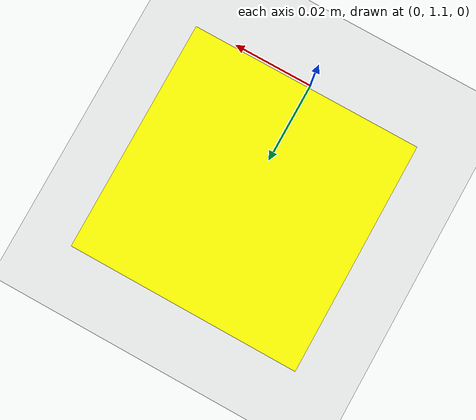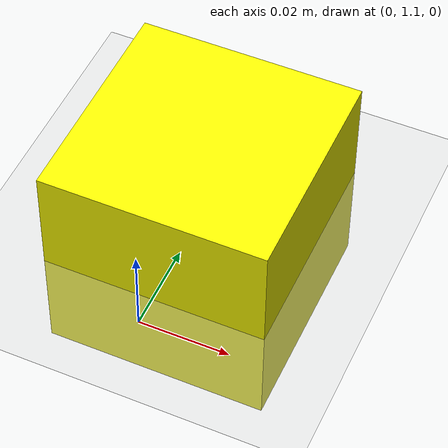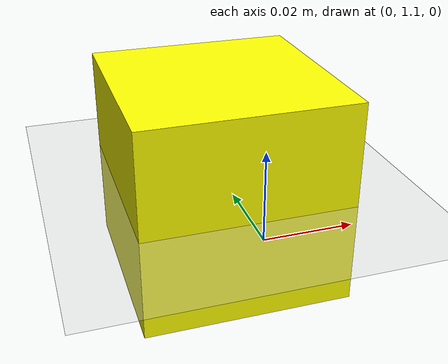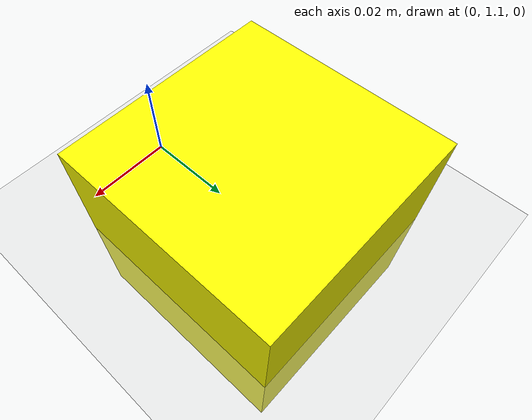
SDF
<?xml version="1.0" ?>
<sdf version="1.6">
  <world name="proper_field_world">
    <physics name="1ms" type="ignored">
      <max_step_size>0.001</max_step_size>
      <real_time_factor>1.0</real_time_factor>
    </physics>

    <plugin filename="gz-sim-physics-system" name="gz::sim::systems::Physics"/>
    <plugin filename="gz-sim-user-commands-system" name="gz::sim::systems::UserCommands"/>
    <plugin filename="gz-sim-scene-broadcaster-system" name="gz::sim::systems::SceneBroadcaster"/>
    <plugin filename="gz-sim-sensors-system" name="gz::sim::systems::Sensors">
      <render_engine>ogre2</render_engine>
    </plugin>

    <light name="sun" type="directional">
      <cast_shadows>true</cast_shadows>
      <pose>0 0 10 0 0 0</pose>
      <diffuse>0.8 0.8 0.8 1</diffuse>
      <specular>0.2 0.2 0.2 1</specular>
      <direction>-0.5 0.1 -0.9</direction>
    </light>

    <model name="ground_plane">
      <static>true</static>
      <link name="link">
        <collision name="collision">
          <geometry>
            <plane>
              <normal>0 0 1</normal>
              <size>100 100</size>
            </plane>
          </geometry>
        </collision>
        <visual name="visual">
          <geometry>
            <plane>
              <normal>0 0 1</normal>
              <size>100 100</size>
            </plane>
          </geometry>
          <material>
            <ambient>0.5 0.5 0.5 1</ambient>
            <diffuse>0.8 0.8 0.8 1</diffuse>
          </material>
        </visual>
      </link>
    </model>

    <include>
      <uri>model://proper_field</uri>
      <name>proper_field</name>
      <pose>0 1.13143 0 0 0 0</pose>
    </include>

  </world>
</sdf>

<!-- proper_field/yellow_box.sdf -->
<sdf version="1.6">
  <model name="yellow_box">
    <static>false</static>
    <link name="link">
      <inertial>
        <mass>0.1</mass>
        <inertia>
          <ixx>0.000166</ixx>
          <ixy>0</ixy>
          <ixz>0</ixz>
          <iyy>0.000166</iyy>
          <iyz>0</iyz>
          <izz>0.000166</izz>
        </inertia>
      </inertial>
      <collision name="collision">
        <geometry>
          <box>
            <size>0.05 0.05 0.05</size>
          </box>
        </geometry>
      </collision>
      <visual name="visual">
        <geometry>
          <box>
            <size>0.05 0.05 0.05</size>
          </box>
        </geometry>
        <material>
          <ambient>1 1 0 1</ambient>
          <diffuse>1 1 0 1</diffuse>
          <specular>0.05 0.05 0.05 1</specular>
        </material>
      </visual>
    </link>
  </model>
</sdf>
